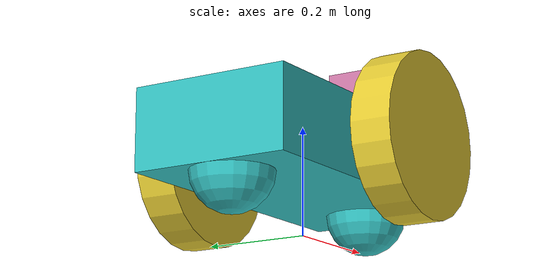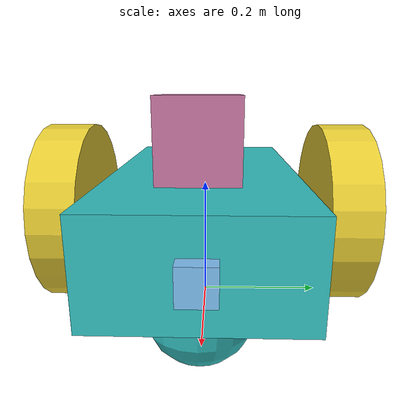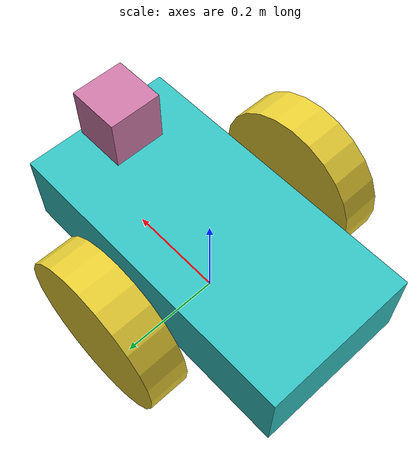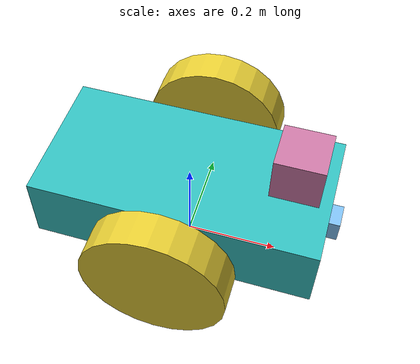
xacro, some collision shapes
<robot name="my_robot" xmlns:xacro="http://www.ros.org/wiki/xacro">

  <xacro:include filename="$(find my_robot)/urdf/my_robot.gazebo" />

  <link name="robot_footprint"></link>

  <joint name="robot_footprint_joint" type="fixed">
    <origin xyz="0 0 0.15" rpy="0 0 0" />
    <parent link="robot_footprint"/>
    <child link="chassis" />
  </joint>

  <link name='chassis'>
    <pose>0 0 0.15 0 0 0</pose>

    <inertial>
      <mass value="50.0"/>
      <origin xyz="0.0 0 0" rpy=" 0 0 0"/>
      <inertia
          ixx="0.3375" ixy="0" ixz="0"
          iyy="0.3375" iyz="0"
          izz="0.3375"
      />
    </inertial>

    <collision name='collision'>
      <origin xyz="0 0 0" rpy=" 0 0 0"/>
      <geometry>
        <box size=".6 .3 .15"/>
      </geometry>
    </collision>

    <visual name='chassis_visual'>
      <origin xyz="0 0 0" rpy=" 0 0 0"/>
      <geometry>
        <box size=".6 .3 .15"/>
      </geometry>
    </visual>

    <collision name='back_caster_collision'>
      <origin xyz="-0.225 0 -0.075" rpy=" 0 0 0"/>
      <geometry>
        <sphere radius="0.07485"/>
      </geometry>
    </collision>

    <visual name='back_caster_visual'>
      <origin xyz="-0.225 0 -0.075" rpy=" 0 0 0"/>
      <geometry>
        <sphere radius="0.075"/>
      </geometry>
    </visual>

    <collision name='front_caster_collision'>
      <origin xyz="0.225 0 -0.075" rpy=" 0 0 0"/>
      <geometry>
        <sphere radius="0.07485"/>
      </geometry>
    </collision>

    <visual name='front_caster_visual'>
      <origin xyz="0.225 0 -0.075" rpy=" 0 0 0"/>
      <geometry>
        <sphere radius="0.075"/>
      </geometry>
    </visual>

  </link>

  <!-- Left wheel -->
  <link name='left_wheel'>
   <inertial>
      <mass value="17.0"/>
      <origin xyz="0.0 0.0 0.0" rpy="0.0 1.5707 1.5707"/>
      <inertia
          ixx="0.3375" ixy="0" ixz="0"
          iyy="0.3375" iyz="0"
          izz="0.3375"/>
    </inertial>

    <collision>
      <origin xyz="0.0 0.0 0.0" rpy="0.0 1.5707 1.5707"/>
      <geometry>
        <cylinder length="0.075" radius="0.15"/>
      </geometry>
    </collision>

    <visual>
      <origin xyz="0.0 0.0 0.0" rpy="0.0 1.5707 1.5707"/>
      <geometry>
        <cylinder length="0.075" radius="0.15"/>
      </geometry>
    </visual>
  </link>

  <!-- Right wheel -->
  <link name='right_wheel'>
   <inertial>
      <mass value="15.0"/>
      <origin xyz="0.0 0.0 0.0" rpy="0.0 1.5707 1.5707"/>
      <inertia
          ixx="0.3375" ixy="0" ixz="0"
          iyy="0.3375" iyz="0"
          izz="0.3375"/>
    </inertial>

    <collision>
      <origin xyz="0.0 0.0 0.0" rpy="0.0 1.5707 1.5707"/>
      <geometry>
        <cylinder length="0.075" radius="0.15"/>
      </geometry>
    </collision>

    <visual>
      <origin xyz="0.0 0.0 0.0" rpy="0.0 1.5707 1.5707"/>
      <geometry>
        <cylinder length="0.075" radius="0.15"/>
      </geometry>
    </visual>
  </link>

  <!-- Wheel joints -->
  <joint type="continuous" name="left_wheel_hinge">
    <origin xyz="0 0.225 0" rpy="0 0 0"/>
    <child link="left_wheel"/>
    <parent link="chassis"/>
    <axis xyz="0 1 0" rpy="0 0 0"/>
    <limit effort="10000" velocity="1000"/>
    <dynamics damping="1.0" friction="1.0"/>
  </joint>

  <joint type="continuous" name="right_wheel_hinge">
    <origin xyz="0 -0.225 0" rpy="0 0 0"/>
    <child link="right_wheel"/>
    <parent link="chassis"/>
    <axis xyz="0 1 0" rpy="0 0 0"/>
    <limit effort="10000" velocity="1000"/>
    <dynamics damping="1.0" friction="1.0"/>
  </joint>

  <!-- Sensors -->

  <!-- Camera -->
  <link name="camera">
    <inertial>
      <mass value="0.1"/>
      <origin xyz="0.0 0.0 0.0" rpy="0.0 0.0 0.0" />
      <inertia
          ixx="1e-6" ixy="0" ixz="0"
          iyy="1e-6" iyz="0"
          izz="1e-6"/>
    </inertial>

    <collision>
      <origin xyz="0.0 0.0 0.0" rpy="0.0 0.0 0.0"/>
      <geometry>
        <box size="0.05 0.05 0.05"/>
      </geometry>
    </collision>

    <visual>
      <origin xyz="0.0 0.0 0.0" rpy="0.0 0.0 0.0"/>
      <geometry>
        <box size="0.05 0.05 0.05"/>
      </geometry>
    </visual>
  </link>

  <joint name="camera_joint" type="fixed">
    <axis xyz="0 1 0" rpy="0 0 0"/>
    <origin xyz="0.3 0.0 0" rpy="0 0 0"/>
    <child link="camera"/>
    <parent link="chassis"/>
  </joint>

  <!-- Depth camera -->
  <joint name="camera_optical_joint" type="fixed">
    <origin xyz="0 0 0" rpy="-1.5707 0 -1.5707"/>
    <parent link="camera"/>
    <child link="camera_link_optical"/>
  </joint>

  <link name="camera_link_optical">
  </link>

  <!-- Lidar -->

  <link name="hokuyo">
    <inertial>
      <mass value="1e-5"/>
      <origin xyz="0.0 0.0 0.0" rpy="0.0 0.0 0.0" />
      <inertia
          ixx="1e-6" ixy="0" ixz="0"
          iyy="1e-6" iyz="0"
          izz="1e-6"/>
    </inertial>

    <collision>
      <origin xyz="0.0 0.0 0.0" rpy="0.0 0.0 0.0"/>
      <geometry>
        <box size="0.1 0.1 0.1"/>
      </geometry>
    </collision>

    <visual>
      <origin xyz="0.0 0.0 0.0" rpy="0.0 0.0 0.0"/>
      <geometry>
        <mesh filename="package://my_robot/meshes/hokuyo.dae" />
      </geometry>
    </visual>
  </link>

  <joint name="hokuyo_joint" type="fixed">
    <axis xyz="0 1 0" rpy="0 0 0"/>
    <origin xyz="0.225 0.0 0.15" rpy="0 0 0"/>
    <child link="hokuyo"/>
    <parent link="chassis"/>
  </joint>

  <!-- Assign colors to parts of the robot -->

  <gazebo reference="left_wheel">
    <material>Gazebo/ZincYellow</material>
  </gazebo>

  <gazebo reference="right_wheel">
    <material>Gazebo/ZincYellow</material>
  </gazebo>

  <gazebo reference="chassis">
    <material>Gazebo/Turquoise</material>
  </gazebo>

  <gazebo reference="camera">
    <material>Gazebo/SkyBlue</material>
  </gazebo>

</robot>
